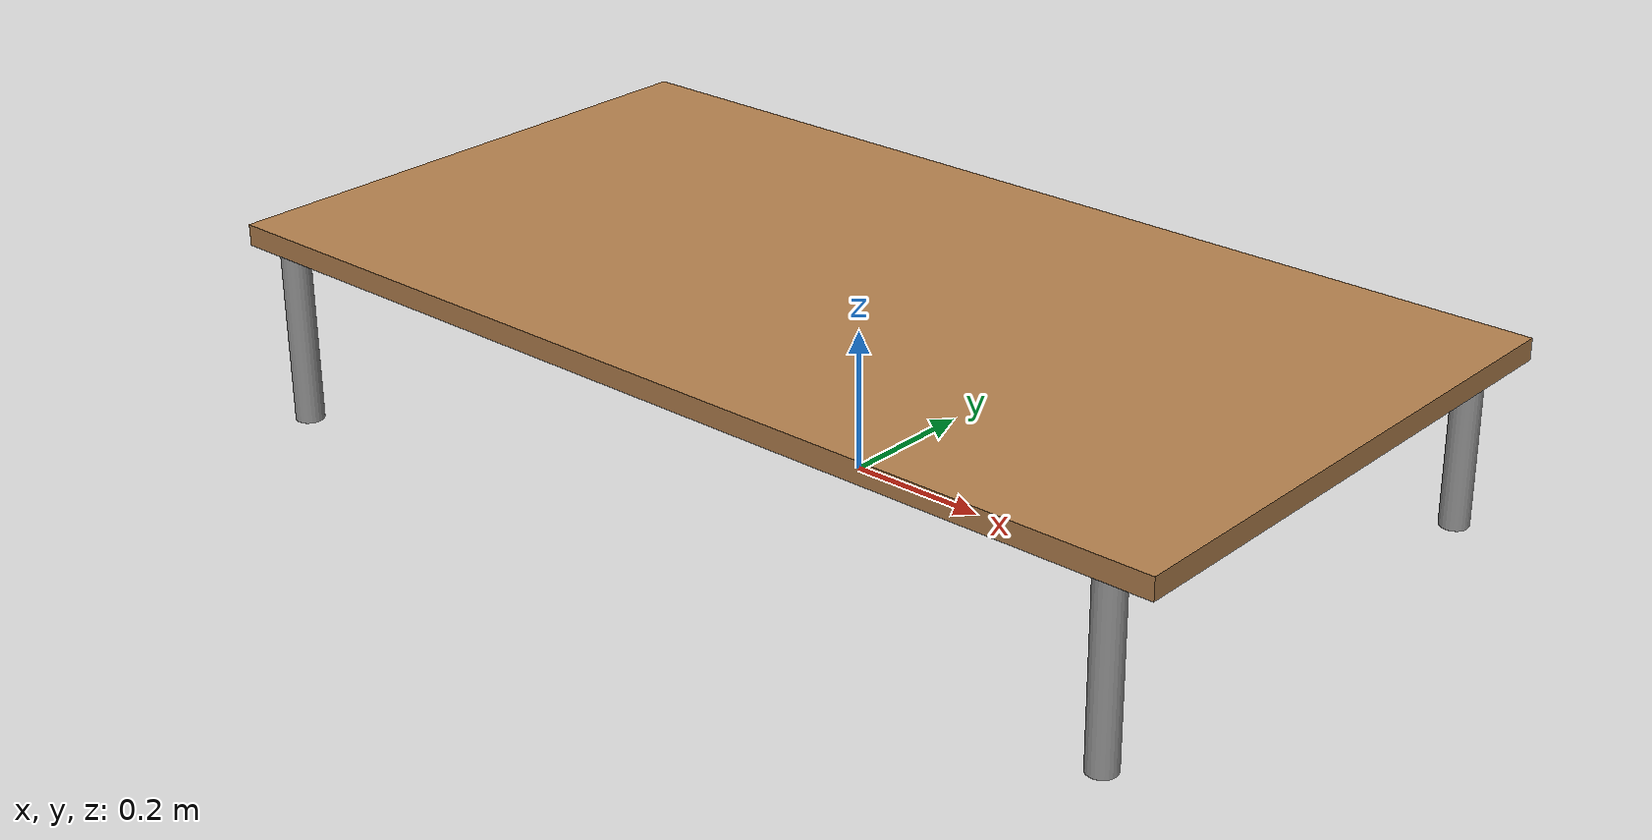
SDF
<?xml version="1.0" ?>
<sdf version="1.5">
  <model name="table">
    <static>true</static>
    <link name="link">
      <collision name="surface">
        <pose>0 0 0.26 0 0 0</pose> <!-- 修改了这里的 z 坐标 -->
        <geometry>
          <box>
            <size>1.5 0.8 0.03</size>
          </box>
        </geometry>
        <surface>
          <friction>
            <ode>
              <mu>0.6</mu>
              <mu2>0.6</mu2>
            </ode>
          </friction>
        </surface>
      </collision>
      <visual name="visual1">
        <pose>0 0 0.26 0 0 0</pose> <!-- 修改了这里的 z 坐标 -->
        <geometry>
          <box>
            <size>1.5 0.8 0.03</size>
          </box>
        </geometry>
        <material>
          <script>
            <uri>file://media/materials/scripts/gazebo.material</uri>
            <name>Gazebo/Wood</name>
          </script>
        </material>
      </visual>
      <collision name="front_left_leg">
        <pose>0.68 0.38 0.13 0 0 0</pose> <!-- 修改了这里的 z 坐标 -->
        <geometry>
          <cylinder>
            <radius>0.02</radius>
            <length>0.26</length> <!-- 修改了这里的长度 -->
          </cylinder>
        </geometry>
      </collision>
      <visual name="front_left_leg">
        <pose>0.68 0.38 0.13 0 0 0</pose> <!-- 修改了这里的 z 坐标 -->
        <geometry>
          <cylinder>
            <radius>0.02</radius>
            <length>0.26</length> <!-- 修改了这里的长度 -->
          </cylinder>
        </geometry>
        <material>
          <script>
            <uri>file://media/materials/scripts/gazebo.material</uri>
            <name>Gazebo/Grey</name>
          </script>
        </material>
      </visual>
      <collision name="front_right_leg">
        <pose>0.68 -0.38 0.13 0 0 0</pose> <!-- 修改了这里的 z 坐标 -->
        <geometry>
          <cylinder>
            <radius>0.02</radius>
            <length>0.26</length> <!-- 修改了这里的长度 -->
          </cylinder>
        </geometry>
      </collision>
      <visual name="front_right_leg">
        <pose>0.68 -0.38 0.13 0 0 0</pose> <!-- 修改了这里的 z 坐标 -->
        <geometry>
          <cylinder>
            <radius>0.02</radius>
            <length>0.26</length> <!-- 修改了这里的长度 -->
          </cylinder>
        </geometry>
        <material>
          <script>
            <uri>file://media/materials/scripts/gazebo.material</uri>
            <name>Gazebo/Grey</name>
          </script>
        </material>
      </visual>
      <collision name="back_right_leg">
        <pose>-0.68 -0.38 0.13 0 0 0</pose> <!-- 修改了这里的 z 坐标 -->
        <geometry>
          <cylinder>
            <radius>0.02</radius>
            <length>0.26</length> <!-- 修改了这里的长度 -->
          </cylinder>
        </geometry>
      </collision>
      <visual name="back_right_leg">
        <pose>-0.68 -0.38 0.13 0 0 0</pose> <!-- 修改了这里的 z 坐标 -->
        <geometry>
          <cylinder>
            <radius>0.02</radius>
            <length>0.26</length> <!-- 修改了这里的长度 -->
          </cylinder>
        </geometry>
        <material>
          <script>
            <uri>file://media/materials/scripts/gazebo.material</uri>
            <name>Gazebo/Grey</name>
          </script>
        </material>
      </visual>
      <collision name="back_left_leg">
        <pose>-0.68 0.38 0.13 0 0 0</pose> <!-- 修改了这里的 z 坐标 -->
        <geometry>
          <cylinder>
            <radius>0.02</radius>
            <length>0.26</length> <!-- 修改了这里的长度 -->
          </cylinder>
        </geometry>
      </collision>
      <visual name="back_left_leg">
        <pose>-0.68 0.38 0.13 0 0 0</pose> <!-- 修改了这里的 z 坐标 -->
        <geometry>
          <cylinder>
            <radius>0.02</radius>
            <length>0.26</length> <!-- 修改了这里的长度 -->
          </cylinder>
        </geometry>
        <material>
          <script>
            <uri>file://media/materials/scripts/gazebo.material</uri>
            <name>Gazebo/Grey</name>
          </script>
        </material>
      </visual>
    </link>
  </model>
</sdf>
